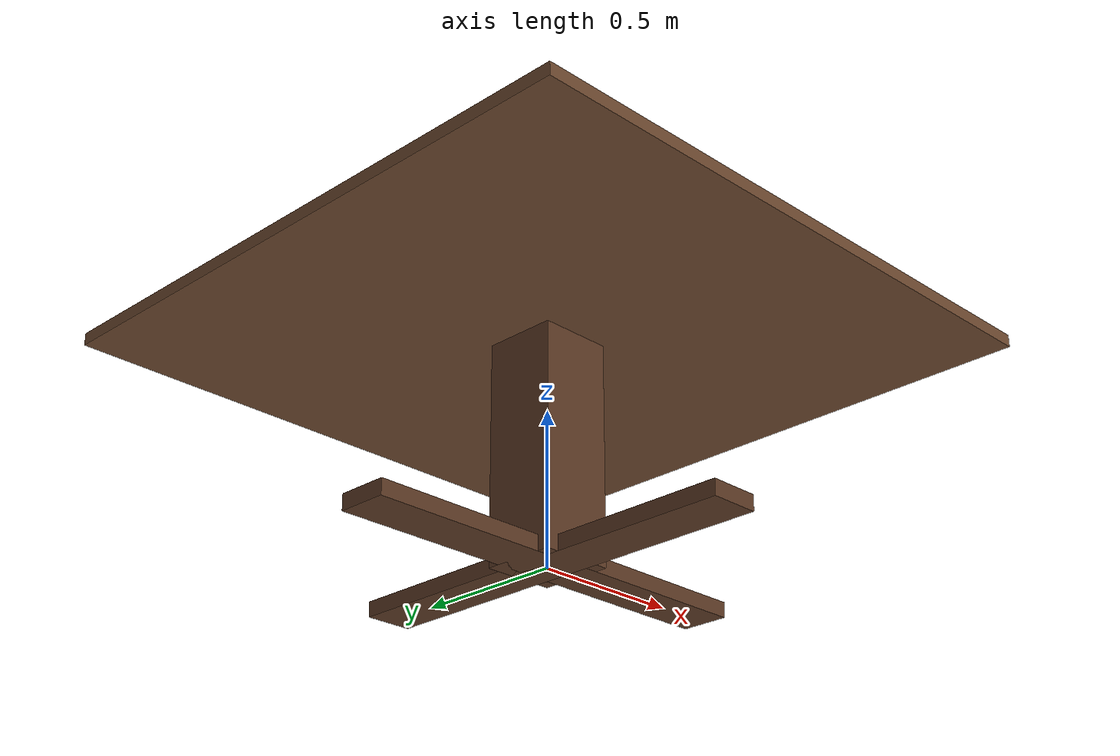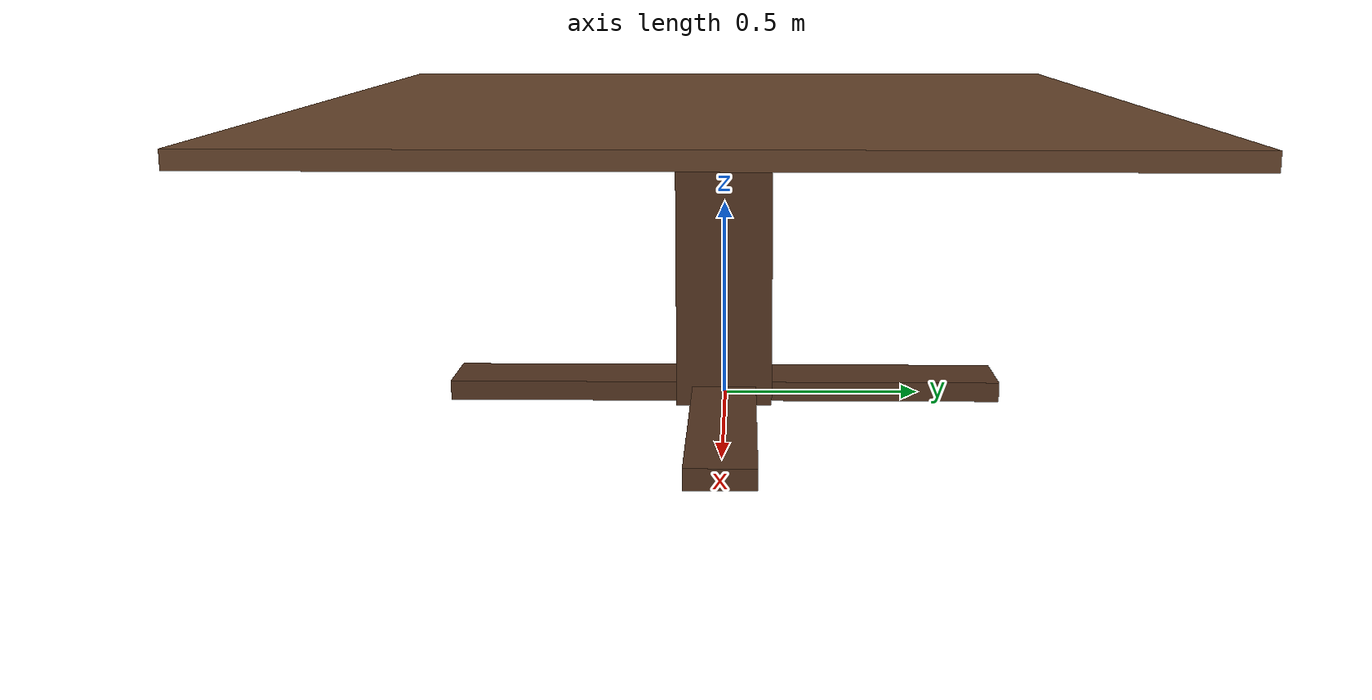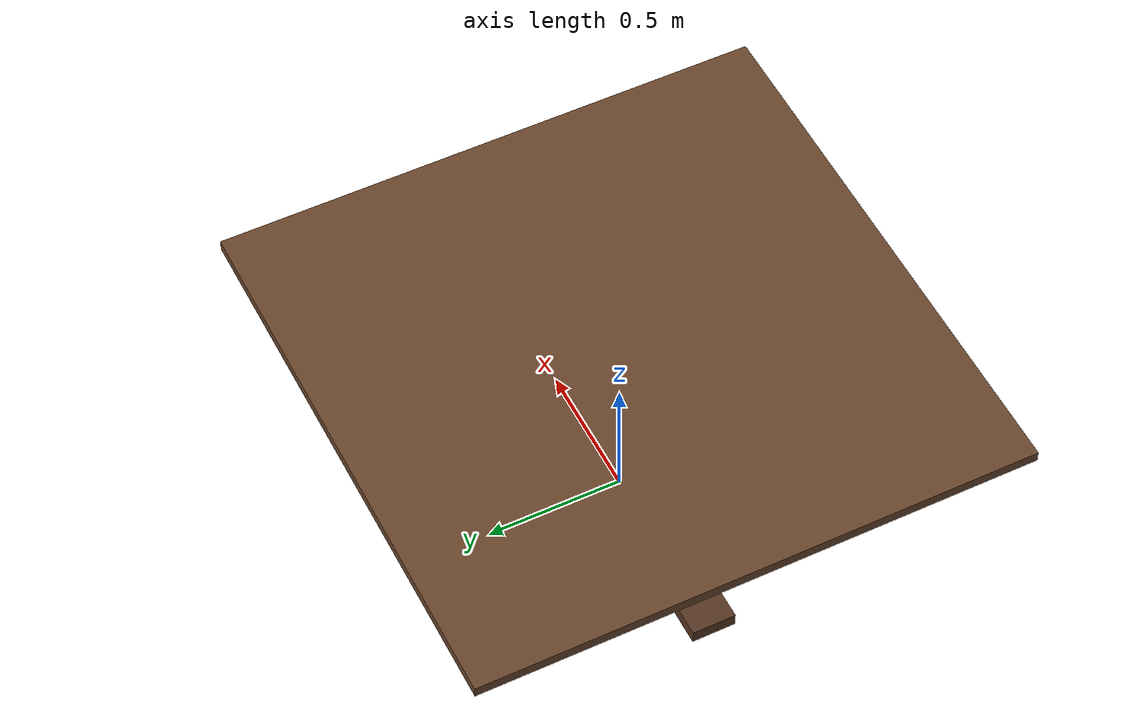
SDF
<?xml version="1.0" ?>
<sdf version="1.7">
  <model name="dining_table">
    <static>true</static>

    <!-- Table top: 2.0 × 2.0 × 0.04 m, surface at z=0.76 -->
    <link name="top">
      <pose>0 0 0.74 0 0 0</pose>
      <collision name="collision">
        <geometry><box><size>2.00 2.00 0.04</size></box></geometry>
      </collision>
      <visual name="visual">
        <geometry><box><size>2.00 2.00 0.04</size></box></geometry>
        <material>
          <ambient>0.42 0.28 0.18 1</ambient>
          <diffuse>0.42 0.28 0.18 1</diffuse>
          <specular>0.15 0.10 0.05 1</specular>
        </material>
      </visual>
    </link>

    <!-- Central pedestal: 0.24 × 0.24 × 0.72 m -->
    <link name="pedestal">
      <pose>0 0 0.36 0 0 0</pose>
      <collision name="collision">
        <geometry><box><size>0.24 0.24 0.72</size></box></geometry>
      </collision>
      <visual name="visual">
        <geometry><box><size>0.24 0.24 0.72</size></box></geometry>
        <material>
          <ambient>0.35 0.22 0.14 1</ambient>
          <diffuse>0.35 0.22 0.14 1</diffuse>
          <specular>0.10 0.07 0.04 1</specular>
        </material>
      </visual>
    </link>

    <!-- Base cross-feet: two thin bars at z=0.04 -->
    <link name="foot_ns">
      <pose>0 0 0.025 0 0 0</pose>
      <collision name="collision">
        <geometry><box><size>0.16 1.40 0.05</size></box></geometry>
      </collision>
      <visual name="visual">
        <geometry><box><size>0.16 1.40 0.05</size></box></geometry>
        <material>
          <ambient>0.35 0.22 0.14 1</ambient>
          <diffuse>0.35 0.22 0.14 1</diffuse>
          <specular>0.10 0.07 0.04 1</specular>
        </material>
      </visual>
    </link>

    <link name="foot_ew">
      <pose>0 0 0.025 0 0 1.5708</pose>
      <collision name="collision">
        <geometry><box><size>0.16 1.40 0.05</size></box></geometry>
      </collision>
      <visual name="visual">
        <geometry><box><size>0.16 1.40 0.05</size></box></geometry>
        <material>
          <ambient>0.35 0.22 0.14 1</ambient>
          <diffuse>0.35 0.22 0.14 1</diffuse>
          <specular>0.10 0.07 0.04 1</specular>
        </material>
      </visual>
    </link>

  </model>
</sdf>
